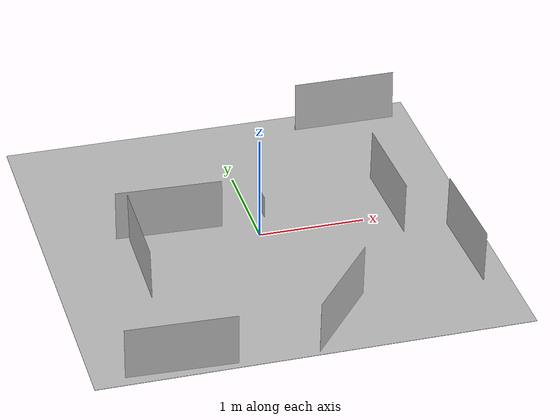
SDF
<sdf version="1.6">
 <world name="default">
  <light name="sun" type="directional">
   <pose>0 0 10 0 -0 0</pose>
   <diffuse>0.8 0.8 0.8 1</diffuse>
   <specular>0.2 0.2 0.2 1</specular>
   <attenuation>
    <range>1000</range>
    <constant>0.9</constant>
    <linear>0.01</linear>
    <quadratic>0.001</quadratic>
   </attenuation>
   <direction>-0.5 0.1 -0.9</direction>
  </light>
  <gravity>0 0 -9.8</gravity>
  <magnetic_field>6e-06 2.3e-05 -4.2e-05</magnetic_field>
  <atmosphere type="adiabatic"/>
  <physics name="default_physics" default="0" type="ode">
   <max_step_size>0.001</max_step_size>
   <real_time_factor>1</real_time_factor>
   <real_time_update_rate>1000</real_time_update_rate>
  </physics>
  <scene><ambient>0.4 0.4 0.4 1</ambient><background>0.7 0.7 0.7 1</background><shadows>1</shadows></scene>
  <spherical_coordinates>
   <surface_model>EARTH_WGS84</surface_model>
   <latitude_deg>0</latitude_deg>
   <longitude_deg>0</longitude_deg>
   <elevation>0</elevation>
   <heading_deg>0</heading_deg>
  </spherical_coordinates>
  <model name="turtlebot3_track">
   <static>1</static>
   <link name="link">
    <collision name="collision">
     <geometry><plane><normal>0 0 1</normal><size>4 4</size></plane></geometry>
     <surface><friction><ode><mu>100</mu><mu2>50</mu2></ode></friction></surface>
    </collision>
    <visual name="visual">
     <cast_shadows>0</cast_shadows>
     <geometry><plane><normal>0 0 1</normal><size>4 4</size></plane></geometry>
     <material>
      <script>
       <uri>model://turtlebot3_autorace_track2/materials/scripts</uri>
       <uri>model://turtlebot3_autorace_track2/materials/textures</uri>
       <name>Turtlebot3Track2/Image</name>
      </script>
     </material>
    </visual>
   </link>
  </model>
  <model name="chess_flag">
   <static>1</static>
   <link name="link">
    <collision name="collision">
     <geometry><plane><normal>0 0 1</normal><size>0.2 0.2</size></plane></geometry>
     <surface><friction><ode><mu>100</mu><mu2>50</mu2></ode></friction></surface>
    </collision>
    <visual name="visual">
     <cast_shadows>0</cast_shadows>
     <geometry><plane><normal>0 0 1</normal><size>0.2 0.2</size></plane></geometry>
     <material>
      <script>
       <uri>model://chess_flag/materials/scripts</uri>
       <uri>model://chess_flag/materials/textures</uri>
       <name>ChessFlag/Image</name>
      </script>
     </material>
    </visual>
   </link>
   <pose>0.019732 0.001451 0.35 0 -1.55 0</pose>
  </model>
  <light name="user_point_light_0" type="point">
   <pose>-0.667095 0.253077 1 0 -0 0</pose>
   <diffuse>0.5 0.5 0.5 1</diffuse>
   <specular>0.1 0.1 0.1 1</specular>
   <attenuation>
    <range>20</range>
    <constant>0.5</constant>
    <linear>0.01</linear>
    <quadratic>0.001</quadratic>
   </attenuation>
   <cast_shadows>0</cast_shadows>
   <direction>0 0 -1</direction>
  </light>
  <model name="chess_flag_0">
   <static>1</static>
   <link name="link">
    <collision name="collision">
     <geometry><plane><normal>0 0 1</normal><size>1 0.5</size></plane></geometry>
     <surface><friction><ode><mu>100</mu><mu2>50</mu2></ode></friction></surface>
    </collision>
    <visual name="visual">
     <cast_shadows>0</cast_shadows>
     <geometry><plane><normal>0 0 1</normal><size>1 0.5</size></plane></geometry>
     <material>
      <script>
       <uri>model://cocacola_logo/materials/scripts</uri>
       <uri>model://cocacola_logo/materials/textures</uri>
       <name>CocaCola/Image</name>
      </script>
     </material>
    </visual>
   </link>
   <pose>1.3 0.2 0.25 1.55 -0 -1.55</pose>
  </model>
  <model name="chess_flag_1">
   <static>1</static>
   <link name="link">
    <collision name="collision">
     <geometry><plane><normal>0 0 1</normal><size>1 0.5</size></plane></geometry>
     <surface><friction><ode><mu>100</mu><mu2>50</mu2></ode></friction></surface>
    </collision>
    <visual name="visual">
     <cast_shadows>0</cast_shadows>
     <geometry><plane><normal>0 0 1</normal><size>1 0.5</size></plane></geometry>
     <material>
      <script>
       <uri>model://rolex_logo/materials/scripts</uri>
       <uri>model://rolex_logo/materials/textures</uri>
       <name>Rolex/Image</name>
      </script>
     </material>
    </visual>
   </link>
   <pose>1.3321 1.75237 0.25 1.55 -0 0</pose>
  </model>
  <model name="chess_flag_2">
   <static>1</static>
   <link name="link">
    <collision name="collision">
     <geometry><plane><normal>0 0 1</normal><size>1 0.5</size></plane></geometry>
     <surface><friction><ode><mu>100</mu><mu2>50</mu2></ode></friction></surface>
    </collision>
    <visual name="visual">
     <cast_shadows>0</cast_shadows>
     <geometry><plane><normal>0 0 1</normal><size>1 0.5</size></plane></geometry>
     <material>
      <script>
       <uri>model://pirelli_logo/materials/scripts</uri>
       <uri>model://pirelli_logo/materials/textures</uri>
       <name>Pirelli/Image</name>
      </script>
     </material>
    </visual>
   </link>
   <pose>-0.8 0.25 0.25 1.55 0 3.1</pose>
  </model>
  <model name="chess_flag_3">
   <static>1</static>
   <link name="link">
    <collision name="collision">
     <geometry><plane><normal>0 0 1</normal><size>1 0.5</size></plane></geometry>
     <surface><friction><ode><mu>100</mu><mu2>50</mu2></ode></friction></surface>
    </collision>
    <visual name="visual">
     <cast_shadows>0</cast_shadows>
     <geometry><plane><normal>0 0 1</normal><size>1 0.5</size></plane></geometry>
     <material>
      <script>
       <uri>model://seiko_logo/materials/scripts</uri>
       <uri>model://seiko_logo/materials/textures</uri>
       <name>Seiko/Image</name>
      </script>
     </material>
    </visual>
   </link>
   <pose>-1.2097 -1.91583 0.25 1.55 0 3.1</pose>
  </model>
  <model name="chess_flag_4">
   <static>1</static>
   <link name="link">
    <collision name="collision">
     <geometry><plane><normal>0 0 1</normal><size>1 0.5</size></plane></geometry>
     <surface><friction><ode><mu>100</mu><mu2>50</mu2></ode></friction></surface>
    </collision>
    <visual name="visual">
     <cast_shadows>0</cast_shadows>
     <geometry><plane><normal>0 0 1</normal><size>1 0.5</size></plane></geometry>
     <material>
      <script>
       <uri>model://heineken_logo/materials/scripts</uri>
       <uri>model://heineken_logo/materials/textures</uri>
       <name>Heineken/Image</name>
      </script>
     </material>
    </visual>
   </link>
   <pose>0.330793 -1.57183 0.25 1.55 -0 -2.25</pose>
  </model>
  <model name="chess_flag_5">
   <static>1</static>
   <link name="link">
    <collision name="collision">
     <geometry><plane><normal>0 0 1</normal><size>1 0.5</size></plane></geometry>
     <surface><friction><ode><mu>100</mu><mu2>50</mu2></ode></friction></surface>
    </collision>
    <visual name="visual">
     <cast_shadows>0</cast_shadows>
     <geometry><plane><normal>0 0 1</normal><size>1 0.5</size></plane></geometry>
     <material>
      <script>
       <uri>model://martini_logo/materials/scripts</uri>
       <uri>model://martini_logo/materials/textures</uri>
       <name>Martini/Image</name>
      </script>
     </material>
    </visual>
   </link>
   <pose>1.74794 -0.769155 0.25 1.55 -0 -1.55</pose>
  </model>
  <model name="chess_flag_6">
   <static>1</static>
   <link name="link">
    <collision name="collision">
     <geometry><plane><normal>0 0 1</normal><size>1 0.5</size></plane></geometry>
     <surface><friction><ode><mu>100</mu><mu2>50</mu2></ode></friction></surface>
    </collision>
    <visual name="visual">
     <cast_shadows>0</cast_shadows>
     <geometry><plane><normal>0 0 1</normal><size>1 0.5</size></plane></geometry>
     <material>
      <script>
       <uri>model://redbull_logo/materials/scripts</uri>
       <uri>model://redbull_logo/materials/textures</uri>
       <name>RedBull/Image</name>
      </script>
     </material>
    </visual>
   </link>
   <pose>-1.2 -0.27416 0.25 1.55 -0 1.55</pose>
  </model>
 </world>
</sdf>
